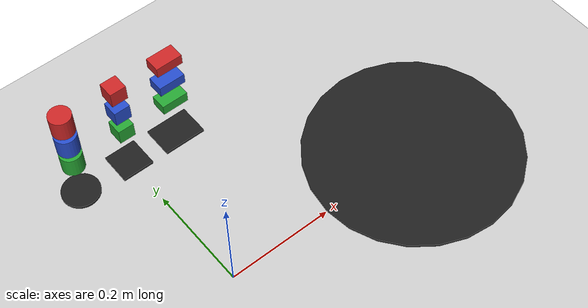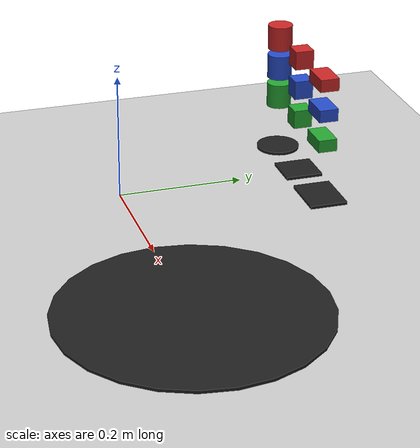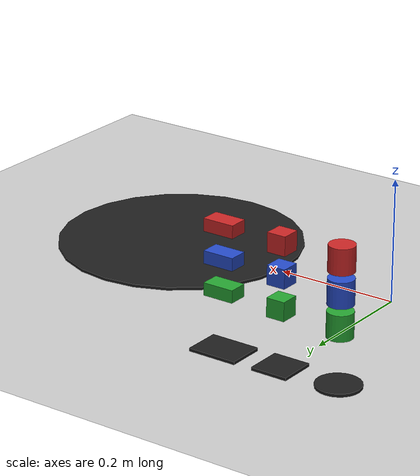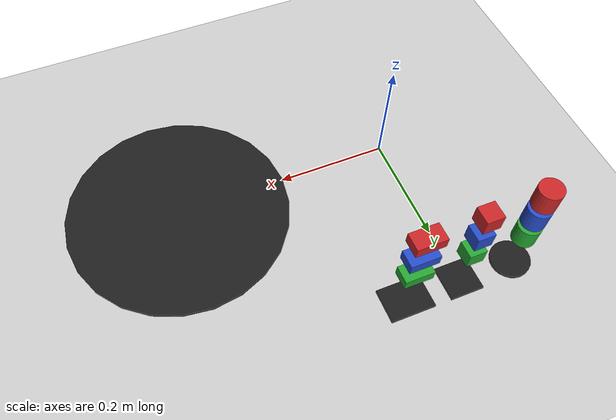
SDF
<?xml version='1.0' ?>
<sdf version='1.4'>
  <world name='empty'>
    <!-- A global light source -->
    <include>
      <uri>model://sun</uri>
    </include>

    <!-- A ground plane -->
    <include>
      <uri>model://ground_plane</uri>
    </include>

    <!-- Physics settings for simulation -->

    <physics type='ode'>
      <max_step_size>0.001</max_step_size>
      <real_time_factor>1</real_time_factor>
      <real_time_update_rate>1000</real_time_update_rate>
      <gravity>0 0 -9.81</gravity>
    </physics>

    <model name='table_model'>
      <static>true</static>
      <pose frame=''>0.40 0.00 0.005 0 -0 0</pose>
      <link name='table_model_link'>
        <inertial>
          <mass>0.1</mass>
          <inertia>
            <ixx>0.016</ixx>
            <ixy>0</ixy>
            <ixz>0</ixz>
            <iyy>0.016</iyy>
            <iyz>0</iyz>
            <izz>0.006</izz>
          </inertia>
        </inertial>
        <collision name='collision'>
          <geometry>
            <cylinder>
              <radius>0.2</radius>
              <length>0.005</length>
            </cylinder>
          </geometry>
          <max_contacts>10</max_contacts>
          <surface>
            <friction>
              <ode>
                <mu>1.0</mu>
                <mu2>1.0</mu2>
              </ode>
            </friction>

           </surface>
        </collision>
        <visual name='visual'>
          <geometry>
            <cylinder>
              <radius>0.2</radius>
              <length>0.005</length>
            </cylinder>
          </geometry>
          <material>
            <script>
              <name>Gazebo/Black</name>
              <uri>file://media/materials/scripts/gazebo.material</uri>
            </script>
          </material>
        </visual>
        <self_collide>0</self_collide>
        <kinematic>0</kinematic>
      </link>
    </model>

    <model name='table_box_model'>
      <static>true</static>
      <pose frame=''>0.00 0.30 0.005 0 -0 0</pose>
      <link name='table_box_model_link'>
        <inertial>
          <mass>0.1</mass>
          <inertia>
            <ixx>0.016</ixx>
            <ixy>0</ixy>
            <ixz>0</ixz>
            <iyy>0.016</iyy>
            <iyz>0</iyz>
            <izz>0.006</izz>
          </inertia>
        </inertial>
        <collision name='collision'>
          <geometry>
            <box>
              <size>0.060 0.060 0.005</size>
            </box>
          </geometry>
          <max_contacts>10</max_contacts>
          <surface>
            <friction>
              <ode>
                <mu>1.0</mu>
                <mu2>1.0</mu2>
              </ode>
            </friction>

           </surface>
        </collision>
        <visual name='visual'>
          <geometry>
            <box>
              <size>0.060 0.060 0.005</size>
            </box>
          </geometry>
          <material>
            <script>
              <name>Gazebo/Black</name>
              <uri>file://media/materials/scripts/gazebo.material</uri>
            </script>
          </material>
        </visual>
        <self_collide>0</self_collide>
        <kinematic>0</kinematic>
      </link>
    </model>

    <model name='table_lbox_model'>
      <static>true</static>
      <pose frame=''>0.10 0.30 0.005 0 -0 0</pose>
      <link name='table_lbox_model_link'>
        <inertial>
          <mass>0.1</mass>
          <inertia>
            <ixx>0.016</ixx>
            <ixy>0</ixy>
            <ixz>0</ixz>
            <iyy>0.016</iyy>
            <iyz>0</iyz>
            <izz>0.006</izz>
          </inertia>
        </inertial>
        <collision name='collision'>
          <geometry>
            <box>
              <size>0.080 0.060 0.005</size>
            </box>
          </geometry>
          <max_contacts>10</max_contacts>
          <surface>
            <friction>
              <ode>
                <mu>1.0</mu>
                <mu2>1.0</mu2>
              </ode>
            </friction>

           </surface>
        </collision>
        <visual name='visual'>
          <geometry>
            <box>
              <size>0.080 0.060 0.005</size>
            </box>
          </geometry>
          <material>
            <script>
              <name>Gazebo/Black</name>
              <uri>file://media/materials/scripts/gazebo.material</uri>
            </script>
          </material>
        </visual>
        <self_collide>0</self_collide>
        <kinematic>0</kinematic>
      </link>
    </model>

    <model name='table_cylinder_model'>
      <static>true</static>
      <pose frame=''> -0.10 0.30 0.005 0 -0 0</pose>
      <link name='table_cylinder_model_link'>
        <inertial>
          <mass>0.1</mass>
          <inertia>
            <ixx>0.016</ixx>
            <ixy>0</ixy>
            <ixz>0</ixz>
            <iyy>0.016</iyy>
            <iyz>0</iyz>
            <izz>0.006</izz>
          </inertia>
        </inertial>
        <collision name='collision'>
          <geometry>
            <cylinder>
              <radius>0.035</radius>
              <length>0.005</length>
            </cylinder>
          </geometry>
          <max_contacts>10</max_contacts>
          <surface>
            <friction>
              <ode>
                <mu>1.0</mu>
                <mu2>1.0</mu2>
              </ode>
            </friction>

           </surface>
        </collision>
        <visual name='visual'>
          <geometry>
            <cylinder>
              <radius>0.035</radius>
              <length>0.005</length>
            </cylinder>
          </geometry>
          <material>
            <script>
              <name>Gazebo/Black</name>
              <uri>file://media/materials/scripts/gazebo.material</uri>
            </script>
          </material>
        </visual>
        <self_collide>0</self_collide>
        <kinematic>0</kinematic>
      </link>
    </model>

    <model name='box_model_g'>
      <static>false</static>
      <pose frame=''>0.00 0.30 0.10 0 -0 0</pose>
      <link name='box_model_g_link'>
        <inertial>
          <mass>0.1</mass>
          <inertia>
            <ixx>0.016</ixx>
            <ixy>0</ixy>
            <ixz>0</ixz>
            <iyy>0.016</iyy>
            <iyz>0</iyz>
            <izz>0.006</izz>
          </inertia>
        </inertial>
        <collision name='collision'>
          <geometry>
            <box>
              <size>0.030 0.030 0.030</size>
            </box>
          </geometry>
          <max_contacts>10</max_contacts>
          <surface>
            <friction>
              <ode>
                <mu>1.0</mu>
                <mu2>1.0</mu2>
              </ode>
            </friction>

           </surface>
        </collision>
        <visual name='visual'>
          <geometry>
            <box>
              <size>0.030 0.030 0.030</size>
            </box>
          </geometry>
          <material>
            <script>
              <name>Gazebo/Green</name>
              <uri>file://media/materials/scripts/gazebo.material</uri>
            </script>
          </material>
        </visual>
        <self_collide>0</self_collide>
        <kinematic>0</kinematic>
      </link>
    </model>

    <model name='lbox_model_g'>
      <static>false</static>
      <pose frame=''>0.10 0.30 0.10 0 -0 0</pose>
      <link name='lbox_model_g_link'>
        <inertial>
          <mass>0.1</mass>
          <inertia>
            <ixx>0.016</ixx>
            <ixy>0</ixy>
            <ixz>0</ixz>
            <iyy>0.016</iyy>
            <iyz>0</iyz>
            <izz>0.006</izz>
          </inertia>
        </inertial>
        <collision name='collision'>
          <geometry>
            <box>
              <size>0.050 0.030 0.020</size>
            </box>
          </geometry>
          <max_contacts>10</max_contacts>
          <surface>
            <friction>
              <ode>
                <mu>1.0</mu>
                <mu2>1.0</mu2>
              </ode>
            </friction>

           </surface>
        </collision>
        <visual name='visual'>
          <geometry>
            <box>
              <size>0.050 0.030 0.020</size>
            </box>
          </geometry>
          <material>
            <script>
              <name>Gazebo/Green</name>
              <uri>file://media/materials/scripts/gazebo.material</uri>
            </script>
          </material>
        </visual>
        <self_collide>0</self_collide>
        <kinematic>0</kinematic>
      </link>
    </model>

    <model name='cylinder_model_g'>
      <static>false</static>
      <pose frame=''>-0.10 0.30 0.10 0 -0 0</pose>
      <link name='cylinder_model_g_link'>
       <inertial>
          <mass>0.1</mass>
          <inertia>
            <ixx>0.016</ixx>
            <ixy>0</ixy>
            <ixz>0</ixz>
            <iyy>0.016</iyy>
            <iyz>0</iyz>
            <izz>0.006</izz>
          </inertia>
        </inertial>
        <collision name='collision'>
          <geometry>
            <cylinder>
              <radius>0.02</radius>
              <length>0.04</length>
            </cylinder>
          </geometry>
          <max_contacts>10</max_contacts>
          <surface>
            <friction>
              <ode>
                <mu>1.0</mu>
                <mu2>1.0</mu2>
              </ode>
            </friction>

           </surface>
        </collision>
        <visual name='visual'>
          <geometry>
            <cylinder>
              <radius>0.02</radius>
              <length>0.04</length>
            </cylinder>
          </geometry>
          <material>
            <script>
              <name>Gazebo/Green</name>
              <uri>file://media/materials/scripts/gazebo.material</uri>
            </script>
          </material>
        </visual>
        <self_collide>0</self_collide>
        <kinematic>0</kinematic>
      </link>
    </model>

    <model name='box_model_b'>
      <static>false</static>
      <pose frame=''>0.00 0.30 0.15 0 -0 0</pose>
      <link name='box_model_b_link'>
        <inertial>
          <mass>0.1</mass>
          <inertia>
            <ixx>0.016</ixx>
            <ixy>0</ixy>
            <ixz>0</ixz>
            <iyy>0.016</iyy>
            <iyz>0</iyz>
            <izz>0.006</izz>
          </inertia>
        </inertial>
        <collision name='collision'>
          <geometry>
            <box>
              <size>0.030 0.030 0.030</size>
            </box>
          </geometry>
          <max_contacts>10</max_contacts>
          <surface>
            <friction>
              <ode>
                <mu>1.0</mu>
                <mu2>1.0</mu2>
              </ode>
            </friction>

           </surface>
        </collision>
        <visual name='visual'>
          <geometry>
            <box>
              <size>0.030 0.030 0.030</size>
            </box>
          </geometry>
          <material>
            <script>
              <name>Gazebo/Blue</name>
              <uri>file://media/materials/scripts/gazebo.material</uri>
            </script>
          </material>
        </visual>
        <self_collide>0</self_collide>
        <kinematic>0</kinematic>
      </link>
    </model>

    <model name='lbox_model_b'>
      <static>false</static>
      <pose frame=''>0.10 0.3 0.15 0 -0 0</pose>
      <link name='lbox_model_b_link'>
        <inertial>
          <mass>0.1</mass>
          <inertia>
            <ixx>0.016</ixx>
            <ixy>0</ixy>
            <ixz>0</ixz>
            <iyy>0.016</iyy>
            <iyz>0</iyz>
            <izz>0.006</izz>
          </inertia>
        </inertial>
        <collision name='collision'>
          <geometry>
            <box>
              <size>0.050 0.030 0.020</size>
            </box>
          </geometry>
          <max_contacts>10</max_contacts>
          <surface>
            <friction>
              <ode>
                <mu>1.0</mu>
                <mu2>1.0</mu2>
              </ode>
            </friction>

           </surface>
        </collision>
        <visual name='visual'>
          <geometry>
            <box>
              <size>0.050 0.030 0.020</size>
            </box>
          </geometry>
          <material>
            <script>
              <name>Gazebo/Blue</name>
              <uri>file://media/materials/scripts/gazebo.material</uri>
            </script>
          </material>
        </visual>
        <self_collide>0</self_collide>
        <kinematic>0</kinematic>
      </link>
    </model>

    <model name='cylinder_model_b'>
      <static>false</static>
      <pose frame=''>-0.10 0.30 0.15 0 -0 0</pose>
      <link name='cylinder_model_b_link'>
        <inertial>
          <mass>0.1</mass>
          <inertia>
            <ixx>0.016</ixx>
            <ixy>0</ixy>
            <ixz>0</ixz>
            <iyy>0.016</iyy>
            <iyz>0</iyz>
            <izz>0.006</izz>
          </inertia>
        </inertial>
        <collision name='collision'>
          <geometry>
            <cylinder>
              <radius>0.02</radius>
              <length>0.04</length>
            </cylinder>
          </geometry>
          <max_contacts>10</max_contacts>
          <surface>
            <friction>
              <ode>
                <mu>1.0</mu>
                <mu2>1.0</mu2>
              </ode>
            </friction>

           </surface>
        </collision>
        <visual name='visual'>
          <geometry>
            <cylinder>
              <radius>0.02</radius>
              <length>0.04</length>
            </cylinder>
          </geometry>
          <material>
            <script>
              <name>Gazebo/Blue</name>
              <uri>file://media/materials/scripts/gazebo.material</uri>
            </script>
          </material>
        </visual>
        <self_collide>0</self_collide>
        <kinematic>0</kinematic>
      </link>
    </model>

    <model name='box_model_r'>
      <static>false</static>
      <pose frame=''>0.00 0.30 0.20 0 -0 0</pose>
      <link name='box_model_r_link'>
        <inertial>
          <mass>0.1</mass>
          <inertia>
            <ixx>0.016</ixx>
            <ixy>0</ixy>
            <ixz>0</ixz>
            <iyy>0.016</iyy>
            <iyz>0</iyz>
            <izz>0.006</izz>
          </inertia>
        </inertial>
        <collision name='collision'>
          <geometry>
            <box>
              <size>0.030 0.030 0.030</size>
            </box>
          </geometry>
          <max_contacts>10</max_contacts>
          <surface>
            <friction>
              <ode>
                <mu>1.0</mu>
                <mu2>1.0</mu2>
              </ode>
            </friction>

           </surface>
        </collision>
        <visual name='visual'>
          <geometry>
            <box>
              <size>0.030 0.030 0.030</size>
            </box>
          </geometry>
          <material>
            <script>
              <name>Gazebo/Red</name>
              <uri>file://media/materials/scripts/gazebo.material</uri>
            </script>
          </material>
        </visual>
        <self_collide>0</self_collide>
        <kinematic>0</kinematic>
      </link>
    </model>

    <model name='lbox_model_r'>
      <static>false</static>
      <pose frame=''>0.10 0.3 0.20 0 -0 0</pose>
      <link name='lbox_model_r_link'>
        <inertial>
          <mass>0.1</mass>
          <inertia>
            <ixx>0.016</ixx>
            <ixy>0</ixy>
            <ixz>0</ixz>
            <iyy>0.016</iyy>
            <iyz>0</iyz>
            <izz>0.006</izz>
          </inertia>
        </inertial>
        <collision name='collision'>
          <geometry>
            <box>
              <size>0.050 0.030 0.020</size>
            </box>
          </geometry>
          <max_contacts>10</max_contacts>
          <surface>
            <friction>
              <ode>
                <mu>1.0</mu>
                <mu2>1.0</mu2>
              </ode>
            </friction>

           </surface>
        </collision>
        <visual name='visual'>
          <geometry>
            <box>
              <size>0.050 0.030 0.020</size>
            </box>
          </geometry>
          <material>
            <script>
              <name>Gazebo/Red</name>
              <uri>file://media/materials/scripts/gazebo.material</uri>
            </script>
          </material>
        </visual>
        <self_collide>0</self_collide>
        <kinematic>0</kinematic>
      </link>
    </model>

    <model name='cylinder_model_r'>
      <static>false</static>
      <pose frame=''>-0.10 0.30 0.20 0 -0 0</pose>
      <link name='cylinder_model_r_link'>
        <inertial>
          <mass>0.01</mass>
          <inertia>
            <ixx>0.00016</ixx>
            <ixy>0</ixy>
            <ixz>0</ixz>
            <iyy>0.00016</iyy>
            <iyz>0</iyz>
            <izz>0.00006</izz>
          </inertia>
        </inertial>
        <collision name='collision'>
          <geometry>
            <cylinder>
              <radius>0.02</radius>
              <length>0.04</length>
            </cylinder>
          </geometry>
          <max_contacts>10</max_contacts>
          <surface>
            <friction>
              <ode>
                <mu>1.0</mu>
                <mu2>1.0</mu2>
              </ode>
            </friction>
           </surface>
        </collision>
        <visual name='visual'>
          <geometry>
            <cylinder>
              <radius>0.02</radius>
              <length>0.04</length>
            </cylinder>
          </geometry>
          <material>
            <script>
              <name>Gazebo/Red</name>
              <uri>file://media/materials/scripts/gazebo.material</uri>
            </script>
          </material>
        </visual>
        <self_collide>0</self_collide>
        <kinematic>0</kinematic>
      </link>
    </model>

  </world>
</sdf>
